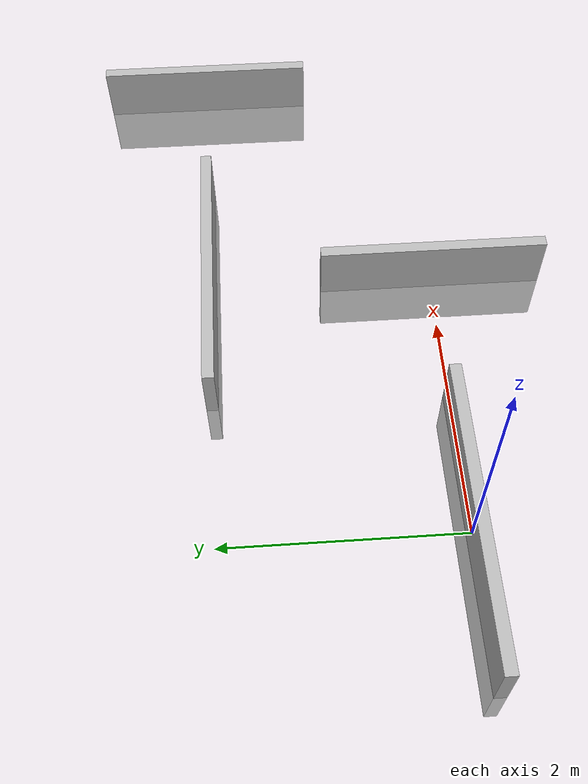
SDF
<?xml version="1.0" ?>
<sdf version="1.6">
  <world name="default">
    <include>
      <uri>model://ground_plane</uri>
    </include>
    <include>
      <uri>model://sun</uri>
    </include>

    <model name="wall_0">
      <static>true</static>
      <link name="link">
        <pose>0 0 0 0 0 0</pose>
        <collision name="collision">
          <geometry>
            <box>
              <size>2.5 0.1 1.0</size>
            </box>
          </geometry>
        </collision>
        <visual name="visual">
          <geometry>
            <box>
              <size>2.5 0.1 1.0</size>
            </box>
          </geometry>
        </visual>
      </link>
    </model>

    <model name="wall_1">
      <static>true</static>
      <link name="link">
        <pose>2.5 0 0 0 0 1.57</pose>
        <collision name="collision">
          <geometry>
            <box>
              <size>2 0.1 1.0</size>
            </box>
          </geometry>
        </collision>
        <visual name="visual">
          <geometry>
            <box>
              <size>2 0.1 1.0</size>
            </box>
          </geometry>
        </visual>
      </link>
    </model>

    <model name="wall_2">
      <static>true</static>
      <link name="link">
        <pose>2.5 2 0 0 0 0</pose>
        <collision name="collision">
          <geometry>
            <box>
              <size>2.5 0.1 1.0</size>
            </box>
          </geometry>
        </collision>
        <visual name="visual">
          <geometry>
            <box>
              <size>2.5 0.1 1.0</size>
            </box>
          </geometry>
        </visual>
      </link>
    </model>

    <model name="wall_3">
      <static>true</static>
      <link name="link">
        <pose>5 2 0 0 0 1.57</pose>
        <collision name="collision">
          <geometry>
            <box>
              <size>2 0.1 1.0</size>
            </box>
          </geometry>
        </collision>
        <visual name="visual">
          <geometry>
            <box>
              <size>2 0.1 1.0</size>
            </box>
          </geometry>
        </visual>
      </link>
    </model>

  </world>
</sdf>
